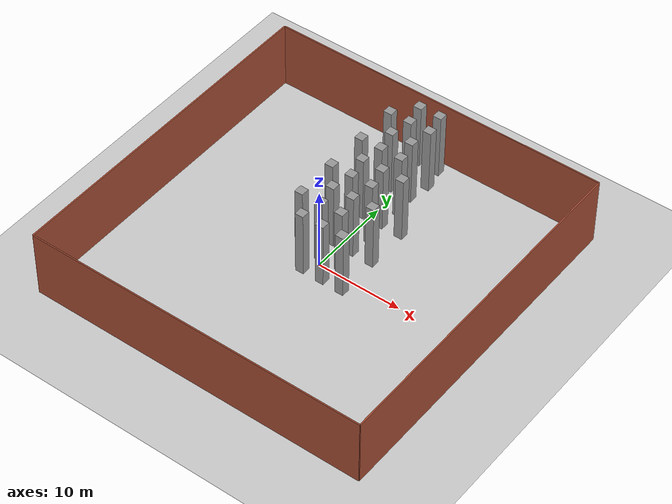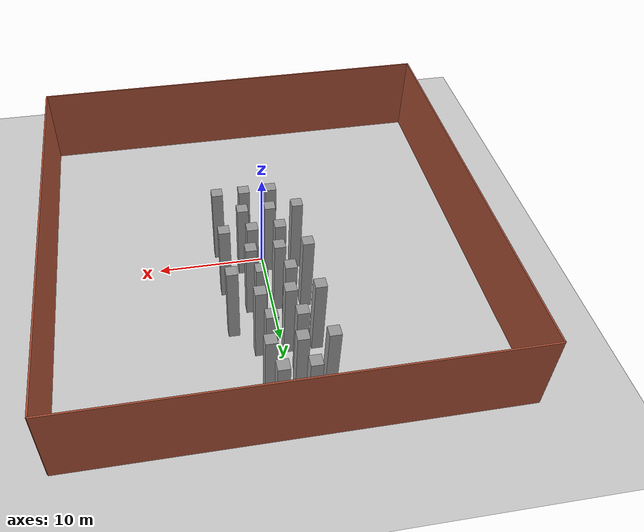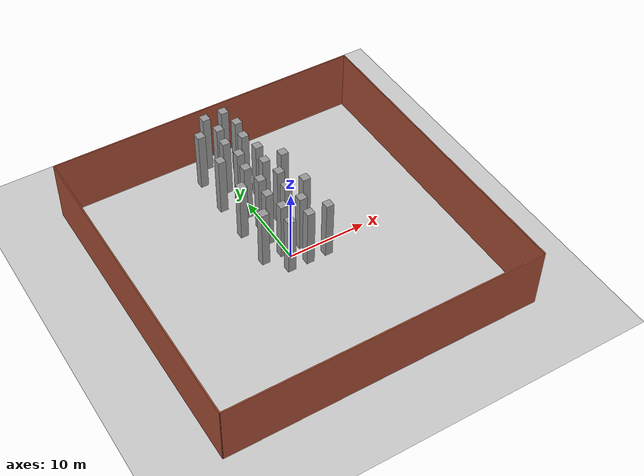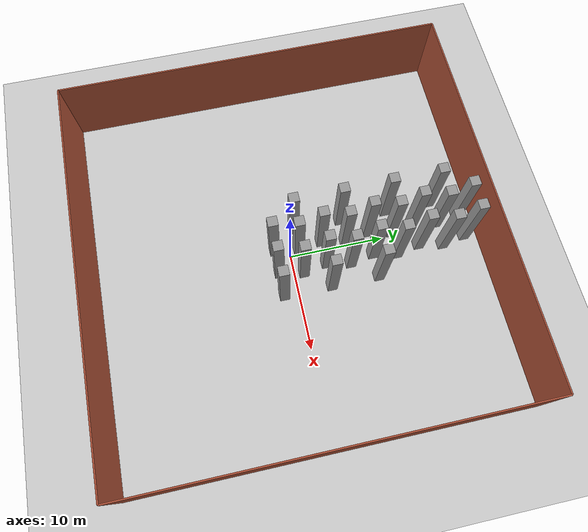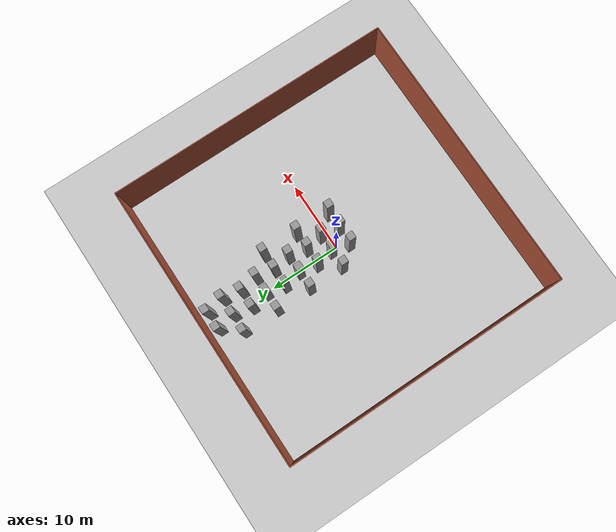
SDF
<sdf version="1.7">
 <world name="default">
  <model name="ground_plane">
   <static>1</static>
   <link name="link">
    <collision name="collision">
     <geometry><plane><normal>0 0 1</normal><size>100 100</size></plane></geometry>
     <surface>
      <contact><collide_bitmask>65535</collide_bitmask></contact>
      <friction><ode><mu>100</mu><mu2>50</mu2></ode></friction>
     </surface>
    </collision>
    <visual name="visual">
     <cast_shadows>0</cast_shadows>
     <geometry><plane><normal>0 0 1</normal><size>100 100</size></plane></geometry>
     <material>
      <script><uri>file://media/materials/scripts/gazebo.material</uri><name>Gazebo/Grey</name></script>
     </material>
    </visual>
   </link>
  </model>
  <model name="sim_room_square">
   <link name="Wall_14">
    <collision name="Wall_14_Collision">
     <geometry><box><size>40 0.15 8</size></box></geometry>
     <pose>0 0 4 0 -0 0</pose>
    </collision>
    <visual name="Wall_14_Visual">
     <pose>0 0 4 0 -0 0</pose>
     <geometry><box><size>40 0.15 8</size></box></geometry>
     <material>
      <script><uri>file://media/materials/scripts/gazebo.material</uri><name>Gazebo/Bricks</name></script>
      <ambient>1 1 1 1</ambient>
     </material>
     <meta><layer>0</layer></meta>
    </visual>
    <pose>20 -0 0 0 -0 -1.5708</pose>
   </link>
   <link name="Wall_15">
    <collision name="Wall_15_Collision">
     <geometry><box><size>40 0.15 8</size></box></geometry>
     <pose>0 0 4 0 -0 0</pose>
    </collision>
    <visual name="Wall_15_Visual">
     <pose>0 0 4 0 -0 0</pose>
     <geometry><box><size>40 0.15 8</size></box></geometry>
     <material>
      <script><uri>file://media/materials/scripts/gazebo.material</uri><name>Gazebo/Bricks</name></script>
      <ambient>1 1 1 1</ambient>
     </material>
     <meta><layer>0</layer></meta>
    </visual>
    <pose>0 -20 0 0 -0 3.14159</pose>
   </link>
   <link name="Wall_16">
    <collision name="Wall_16_Collision">
     <geometry><box><size>40 0.15 8</size></box></geometry>
     <pose>0 0 4 0 -0 0</pose>
    </collision>
    <visual name="Wall_16_Visual">
     <pose>0 0 4 0 -0 0</pose>
     <geometry><box><size>40 0.15 8</size></box></geometry>
     <material>
      <script><uri>file://media/materials/scripts/gazebo.material</uri><name>Gazebo/Bricks</name></script>
      <ambient>1 1 1 1</ambient>
     </material>
     <meta><layer>0</layer></meta>
    </visual>
    <pose>-20 -0 0 0 -0 1.5708</pose>
   </link>
   <link name="Wall_19">
    <collision name="Wall_19_Collision">
     <geometry><box><size>40 0.15 8</size></box></geometry>
     <pose>0 0 4 0 -0 0</pose>
    </collision>
    <visual name="Wall_19_Visual">
     <pose>0 0 4 0 -0 0</pose>
     <geometry><box><size>40 0.15 8</size></box></geometry>
     <material>
      <script><uri>file://media/materials/scripts/gazebo.material</uri><name>Gazebo/Bricks</name></script>
      <ambient>1 1 1 1</ambient>
     </material>
     <meta><layer>0</layer></meta>
    </visual>
    <pose>0 20 0 0 -0 0</pose>
   </link>
   <static>1</static>
  </model>
  <model name="unit_box_static109">
   <link name="link">
    <inertial>
     <mass>1</mass>
     <inertia>
      <ixx>0.166667</ixx>
      <ixy>0</ixy>
      <ixz>0</ixz>
      <iyy>0.166667</iyy>
      <iyz>0</iyz>
      <izz>0.166667</izz>
     </inertia>
    </inertial>
    <visual name="visual">
     <geometry><box><size>1 1 8</size></box></geometry>
     <material>
      <script><name>Gazebo/Grey</name><uri>file://media/materials/scripts/gazebo.material</uri></script>
      <shader type="pixel"/>
     </material>
    </visual>
    <collision name="collision">
     <geometry><box><size>1 1 8</size></box></geometry>
     <surface>
      <friction>
       <ode><mu>1</mu><mu2>1</mu2><fdir1>0 0 0</fdir1><slip1>0</slip1><slip2>0</slip2></ode>
       <torsional>
        <coefficient>1</coefficient>
        <patch_radius>0</patch_radius>
        <surface_radius>0</surface_radius>
        <use_patch_radius>1</use_patch_radius>
        <ode><slip>0</slip></ode>
       </torsional>
      </friction>
      <bounce><restitution_coefficient>0</restitution_coefficient><threshold>1e+06</threshold></bounce>
      <contact>
       <collide_without_contact>0</collide_without_contact>
       <collide_without_contact_bitmask>1</collide_without_contact_bitmask>
       <collide_bitmask>1</collide_bitmask>
       <ode>
        <soft_cfm>0</soft_cfm>
        <soft_erp>0.2</soft_erp>
        <kp>1e+13</kp>
        <kd>1</kd>
        <max_vel>0.01</max_vel>
        <min_depth>0</min_depth>
       </ode>
       <bullet>
        <split_impulse>1</split_impulse>
        <split_impulse_penetration_threshold>-0.01</split_impulse_penetration_threshold>
        <soft_cfm>0</soft_cfm>
        <soft_erp>0.2</soft_erp>
        <kp>1e+13</kp>
        <kd>1</kd>
       </bullet>
      </contact>
     </surface>
    </collision>
   </link>
   <static>1</static>
   <pose>-1 -1.5 4 0 -0 0</pose>
  </model>
  <model name="unit_box_static110">
   <link name="link">
    <inertial>
     <mass>1</mass>
     <inertia>
      <ixx>0.166667</ixx>
      <ixy>0</ixy>
      <ixz>0</ixz>
      <iyy>0.166667</iyy>
      <iyz>0</iyz>
      <izz>0.166667</izz>
     </inertia>
    </inertial>
    <visual name="visual">
     <geometry><box><size>1 1 8</size></box></geometry>
     <material>
      <script><name>Gazebo/Grey</name><uri>file://media/materials/scripts/gazebo.material</uri></script>
      <shader type="pixel"/>
     </material>
    </visual>
    <collision name="collision">
     <geometry><box><size>1 1 8</size></box></geometry>
     <surface>
      <friction>
       <ode><mu>1</mu><mu2>1</mu2><fdir1>0 0 0</fdir1><slip1>0</slip1><slip2>0</slip2></ode>
       <torsional>
        <coefficient>1</coefficient>
        <patch_radius>0</patch_radius>
        <surface_radius>0</surface_radius>
        <use_patch_radius>1</use_patch_radius>
        <ode><slip>0</slip></ode>
       </torsional>
      </friction>
      <bounce><restitution_coefficient>0</restitution_coefficient><threshold>1e+06</threshold></bounce>
      <contact>
       <collide_without_contact>0</collide_without_contact>
       <collide_without_contact_bitmask>1</collide_without_contact_bitmask>
       <collide_bitmask>1</collide_bitmask>
       <ode>
        <soft_cfm>0</soft_cfm>
        <soft_erp>0.2</soft_erp>
        <kp>1e+13</kp>
        <kd>1</kd>
        <max_vel>0.01</max_vel>
        <min_depth>0</min_depth>
       </ode>
       <bullet>
        <split_impulse>1</split_impulse>
        <split_impulse_penetration_threshold>-0.01</split_impulse_penetration_threshold>
        <soft_cfm>0</soft_cfm>
        <soft_erp>0.2</soft_erp>
        <kp>1e+13</kp>
        <kd>1</kd>
       </bullet>
      </contact>
     </surface>
    </collision>
   </link>
   <static>1</static>
   <pose>1.5 -1.5 4 0 -0 0</pose>
  </model>
  <model name="unit_box_static111">
   <link name="link">
    <inertial>
     <mass>1</mass>
     <inertia>
      <ixx>0.166667</ixx>
      <ixy>0</ixy>
      <ixz>0</ixz>
      <iyy>0.166667</iyy>
      <iyz>0</iyz>
      <izz>0.166667</izz>
     </inertia>
    </inertial>
    <visual name="visual">
     <geometry><box><size>1 1 8</size></box></geometry>
     <material>
      <script><name>Gazebo/Grey</name><uri>file://media/materials/scripts/gazebo.material</uri></script>
      <shader type="pixel"/>
     </material>
    </visual>
    <collision name="collision">
     <geometry><box><size>1 1 8</size></box></geometry>
     <surface>
      <friction>
       <ode><mu>1</mu><mu2>1</mu2><fdir1>0 0 0</fdir1><slip1>0</slip1><slip2>0</slip2></ode>
       <torsional>
        <coefficient>1</coefficient>
        <patch_radius>0</patch_radius>
        <surface_radius>0</surface_radius>
        <use_patch_radius>1</use_patch_radius>
        <ode><slip>0</slip></ode>
       </torsional>
      </friction>
      <bounce><restitution_coefficient>0</restitution_coefficient><threshold>1e+06</threshold></bounce>
      <contact>
       <collide_without_contact>0</collide_without_contact>
       <collide_without_contact_bitmask>1</collide_without_contact_bitmask>
       <collide_bitmask>1</collide_bitmask>
       <ode>
        <soft_cfm>0</soft_cfm>
        <soft_erp>0.2</soft_erp>
        <kp>1e+13</kp>
        <kd>1</kd>
        <max_vel>0.01</max_vel>
        <min_depth>0</min_depth>
       </ode>
       <bullet>
        <split_impulse>1</split_impulse>
        <split_impulse_penetration_threshold>-0.01</split_impulse_penetration_threshold>
        <soft_cfm>0</soft_cfm>
        <soft_erp>0.2</soft_erp>
        <kp>1e+13</kp>
        <kd>1</kd>
       </bullet>
      </contact>
     </surface>
    </collision>
   </link>
   <static>1</static>
   <pose>4 -1.5 4 0 -0 0</pose>
  </model>
  <model name="unit_box_static123">
   <link name="link">
    <inertial>
     <mass>1</mass>
     <inertia>
      <ixx>0.166667</ixx>
      <ixy>0</ixy>
      <ixz>0</ixz>
      <iyy>0.166667</iyy>
      <iyz>0</iyz>
      <izz>0.166667</izz>
     </inertia>
    </inertial>
    <visual name="visual">
     <geometry><box><size>1 1 8</size></box></geometry>
     <material>
      <script><name>Gazebo/Grey</name><uri>file://media/materials/scripts/gazebo.material</uri></script>
      <shader type="pixel"/>
     </material>
    </visual>
    <collision name="collision">
     <geometry><box><size>1 1 8</size></box></geometry>
     <surface>
      <friction>
       <ode><mu>1</mu><mu2>1</mu2><fdir1>0 0 0</fdir1><slip1>0</slip1><slip2>0</slip2></ode>
       <torsional>
        <coefficient>1</coefficient>
        <patch_radius>0</patch_radius>
        <surface_radius>0</surface_radius>
        <use_patch_radius>1</use_patch_radius>
        <ode><slip>0</slip></ode>
       </torsional>
      </friction>
      <bounce><restitution_coefficient>0</restitution_coefficient><threshold>1e+06</threshold></bounce>
      <contact>
       <collide_without_contact>0</collide_without_contact>
       <collide_without_contact_bitmask>1</collide_without_contact_bitmask>
       <collide_bitmask>1</collide_bitmask>
       <ode>
        <soft_cfm>0</soft_cfm>
        <soft_erp>0.2</soft_erp>
        <kp>1e+13</kp>
        <kd>1</kd>
        <max_vel>0.01</max_vel>
        <min_depth>0</min_depth>
       </ode>
       <bullet>
        <split_impulse>1</split_impulse>
        <split_impulse_penetration_threshold>-0.01</split_impulse_penetration_threshold>
        <soft_cfm>0</soft_cfm>
        <soft_erp>0.2</soft_erp>
        <kp>1e+13</kp>
        <kd>1</kd>
       </bullet>
      </contact>
     </surface>
    </collision>
   </link>
   <static>1</static>
   <pose>-3 1 4 0 -0 0</pose>
  </model>
  <model name="unit_box_static124">
   <link name="link">
    <inertial>
     <mass>1</mass>
     <inertia>
      <ixx>0.166667</ixx>
      <ixy>0</ixy>
      <ixz>0</ixz>
      <iyy>0.166667</iyy>
      <iyz>0</iyz>
      <izz>0.166667</izz>
     </inertia>
    </inertial>
    <visual name="visual">
     <geometry><box><size>1 1 8</size></box></geometry>
     <material>
      <script><name>Gazebo/Grey</name><uri>file://media/materials/scripts/gazebo.material</uri></script>
      <shader type="pixel"/>
     </material>
    </visual>
    <collision name="collision">
     <geometry><box><size>1 1 8</size></box></geometry>
     <surface>
      <friction>
       <ode><mu>1</mu><mu2>1</mu2><fdir1>0 0 0</fdir1><slip1>0</slip1><slip2>0</slip2></ode>
       <torsional>
        <coefficient>1</coefficient>
        <patch_radius>0</patch_radius>
        <surface_radius>0</surface_radius>
        <use_patch_radius>1</use_patch_radius>
        <ode><slip>0</slip></ode>
       </torsional>
      </friction>
      <bounce><restitution_coefficient>0</restitution_coefficient><threshold>1e+06</threshold></bounce>
      <contact>
       <collide_without_contact>0</collide_without_contact>
       <collide_without_contact_bitmask>1</collide_without_contact_bitmask>
       <collide_bitmask>1</collide_bitmask>
       <ode>
        <soft_cfm>0</soft_cfm>
        <soft_erp>0.2</soft_erp>
        <kp>1e+13</kp>
        <kd>1</kd>
        <max_vel>0.01</max_vel>
        <min_depth>0</min_depth>
       </ode>
       <bullet>
        <split_impulse>1</split_impulse>
        <split_impulse_penetration_threshold>-0.01</split_impulse_penetration_threshold>
        <soft_cfm>0</soft_cfm>
        <soft_erp>0.2</soft_erp>
        <kp>1e+13</kp>
        <kd>1</kd>
       </bullet>
      </contact>
     </surface>
    </collision>
   </link>
   <static>1</static>
   <pose>-0.5 1 4 0 -0 0</pose>
  </model>
  <model name="unit_box_static125">
   <link name="link">
    <inertial>
     <mass>1</mass>
     <inertia>
      <ixx>0.166667</ixx>
      <ixy>0</ixy>
      <ixz>0</ixz>
      <iyy>0.166667</iyy>
      <iyz>0</iyz>
      <izz>0.166667</izz>
     </inertia>
    </inertial>
    <visual name="visual">
     <geometry><box><size>1 1 8</size></box></geometry>
     <material>
      <script><name>Gazebo/Grey</name><uri>file://media/materials/scripts/gazebo.material</uri></script>
      <shader type="pixel"/>
     </material>
    </visual>
    <collision name="collision">
     <geometry><box><size>1 1 8</size></box></geometry>
     <surface>
      <friction>
       <ode><mu>1</mu><mu2>1</mu2><fdir1>0 0 0</fdir1><slip1>0</slip1><slip2>0</slip2></ode>
       <torsional>
        <coefficient>1</coefficient>
        <patch_radius>0</patch_radius>
        <surface_radius>0</surface_radius>
        <use_patch_radius>1</use_patch_radius>
        <ode><slip>0</slip></ode>
       </torsional>
      </friction>
      <bounce><restitution_coefficient>0</restitution_coefficient><threshold>1e+06</threshold></bounce>
      <contact>
       <collide_without_contact>0</collide_without_contact>
       <collide_without_contact_bitmask>1</collide_without_contact_bitmask>
       <collide_bitmask>1</collide_bitmask>
       <ode>
        <soft_cfm>0</soft_cfm>
        <soft_erp>0.2</soft_erp>
        <kp>1e+13</kp>
        <kd>1</kd>
        <max_vel>0.01</max_vel>
        <min_depth>0</min_depth>
       </ode>
       <bullet>
        <split_impulse>1</split_impulse>
        <split_impulse_penetration_threshold>-0.01</split_impulse_penetration_threshold>
        <soft_cfm>0</soft_cfm>
        <soft_erp>0.2</soft_erp>
        <kp>1e+13</kp>
        <kd>1</kd>
       </bullet>
      </contact>
     </surface>
    </collision>
   </link>
   <static>1</static>
   <pose>2 1 4 0 -0 0</pose>
  </model>
  <model name="unit_box_static138">
   <link name="link">
    <inertial>
     <mass>1</mass>
     <inertia>
      <ixx>0.166667</ixx>
      <ixy>0</ixy>
      <ixz>0</ixz>
      <iyy>0.166667</iyy>
      <iyz>0</iyz>
      <izz>0.166667</izz>
     </inertia>
    </inertial>
    <visual name="visual">
     <geometry><box><size>1 1 8</size></box></geometry>
     <material>
      <script><name>Gazebo/Grey</name><uri>file://media/materials/scripts/gazebo.material</uri></script>
      <shader type="pixel"/>
     </material>
    </visual>
    <collision name="collision">
     <geometry><box><size>1 1 8</size></box></geometry>
     <surface>
      <friction>
       <ode><mu>1</mu><mu2>1</mu2><fdir1>0 0 0</fdir1><slip1>0</slip1><slip2>0</slip2></ode>
       <torsional>
        <coefficient>1</coefficient>
        <patch_radius>0</patch_radius>
        <surface_radius>0</surface_radius>
        <use_patch_radius>1</use_patch_radius>
        <ode><slip>0</slip></ode>
       </torsional>
      </friction>
      <bounce><restitution_coefficient>0</restitution_coefficient><threshold>1e+06</threshold></bounce>
      <contact>
       <collide_without_contact>0</collide_without_contact>
       <collide_without_contact_bitmask>1</collide_without_contact_bitmask>
       <collide_bitmask>1</collide_bitmask>
       <ode>
        <soft_cfm>0</soft_cfm>
        <soft_erp>0.2</soft_erp>
        <kp>1e+13</kp>
        <kd>1</kd>
        <max_vel>0.01</max_vel>
        <min_depth>0</min_depth>
       </ode>
       <bullet>
        <split_impulse>1</split_impulse>
        <split_impulse_penetration_threshold>-0.01</split_impulse_penetration_threshold>
        <soft_cfm>0</soft_cfm>
        <soft_erp>0.2</soft_erp>
        <kp>1e+13</kp>
        <kd>1</kd>
       </bullet>
      </contact>
     </surface>
    </collision>
   </link>
   <static>1</static>
   <pose>-1 3.5 4 0 -0 0</pose>
  </model>
  <model name="unit_box_static139">
   <link name="link">
    <inertial>
     <mass>1</mass>
     <inertia>
      <ixx>0.166667</ixx>
      <ixy>0</ixy>
      <ixz>0</ixz>
      <iyy>0.166667</iyy>
      <iyz>0</iyz>
      <izz>0.166667</izz>
     </inertia>
    </inertial>
    <visual name="visual">
     <geometry><box><size>1 1 8</size></box></geometry>
     <material>
      <script><name>Gazebo/Grey</name><uri>file://media/materials/scripts/gazebo.material</uri></script>
      <shader type="pixel"/>
     </material>
    </visual>
    <collision name="collision">
     <geometry><box><size>1 1 8</size></box></geometry>
     <surface>
      <friction>
       <ode><mu>1</mu><mu2>1</mu2><fdir1>0 0 0</fdir1><slip1>0</slip1><slip2>0</slip2></ode>
       <torsional>
        <coefficient>1</coefficient>
        <patch_radius>0</patch_radius>
        <surface_radius>0</surface_radius>
        <use_patch_radius>1</use_patch_radius>
        <ode><slip>0</slip></ode>
       </torsional>
      </friction>
      <bounce><restitution_coefficient>0</restitution_coefficient><threshold>1e+06</threshold></bounce>
      <contact>
       <collide_without_contact>0</collide_without_contact>
       <collide_without_contact_bitmask>1</collide_without_contact_bitmask>
       <collide_bitmask>1</collide_bitmask>
       <ode>
        <soft_cfm>0</soft_cfm>
        <soft_erp>0.2</soft_erp>
        <kp>1e+13</kp>
        <kd>1</kd>
        <max_vel>0.01</max_vel>
        <min_depth>0</min_depth>
       </ode>
       <bullet>
        <split_impulse>1</split_impulse>
        <split_impulse_penetration_threshold>-0.01</split_impulse_penetration_threshold>
        <soft_cfm>0</soft_cfm>
        <soft_erp>0.2</soft_erp>
        <kp>1e+13</kp>
        <kd>1</kd>
       </bullet>
      </contact>
     </surface>
    </collision>
   </link>
   <static>1</static>
   <pose>1.5 3.5 4 0 -0 0</pose>
  </model>
  <model name="unit_box_static140">
   <link name="link">
    <inertial>
     <mass>1</mass>
     <inertia>
      <ixx>0.166667</ixx>
      <ixy>0</ixy>
      <ixz>0</ixz>
      <iyy>0.166667</iyy>
      <iyz>0</iyz>
      <izz>0.166667</izz>
     </inertia>
    </inertial>
    <visual name="visual">
     <geometry><box><size>1 1 8</size></box></geometry>
     <material>
      <script><name>Gazebo/Grey</name><uri>file://media/materials/scripts/gazebo.material</uri></script>
      <shader type="pixel"/>
     </material>
    </visual>
    <collision name="collision">
     <geometry><box><size>1 1 8</size></box></geometry>
     <surface>
      <friction>
       <ode><mu>1</mu><mu2>1</mu2><fdir1>0 0 0</fdir1><slip1>0</slip1><slip2>0</slip2></ode>
       <torsional>
        <coefficient>1</coefficient>
        <patch_radius>0</patch_radius>
        <surface_radius>0</surface_radius>
        <use_patch_radius>1</use_patch_radius>
        <ode><slip>0</slip></ode>
       </torsional>
      </friction>
      <bounce><restitution_coefficient>0</restitution_coefficient><threshold>1e+06</threshold></bounce>
      <contact>
       <collide_without_contact>0</collide_without_contact>
       <collide_without_contact_bitmask>1</collide_without_contact_bitmask>
       <collide_bitmask>1</collide_bitmask>
       <ode>
        <soft_cfm>0</soft_cfm>
        <soft_erp>0.2</soft_erp>
        <kp>1e+13</kp>
        <kd>1</kd>
        <max_vel>0.01</max_vel>
        <min_depth>0</min_depth>
       </ode>
       <bullet>
        <split_impulse>1</split_impulse>
        <split_impulse_penetration_threshold>-0.01</split_impulse_penetration_threshold>
        <soft_cfm>0</soft_cfm>
        <soft_erp>0.2</soft_erp>
        <kp>1e+13</kp>
        <kd>1</kd>
       </bullet>
      </contact>
     </surface>
    </collision>
   </link>
   <static>1</static>
   <pose>4 3.5 4 0 -0 0</pose>
  </model>
  <model name="unit_box_static152">
   <link name="link">
    <inertial>
     <mass>1</mass>
     <inertia>
      <ixx>0.166667</ixx>
      <ixy>0</ixy>
      <ixz>0</ixz>
      <iyy>0.166667</iyy>
      <iyz>0</iyz>
      <izz>0.166667</izz>
     </inertia>
    </inertial>
    <visual name="visual">
     <geometry><box><size>1 1 8</size></box></geometry>
     <material>
      <script><name>Gazebo/Grey</name><uri>file://media/materials/scripts/gazebo.material</uri></script>
      <shader type="pixel"/>
     </material>
    </visual>
    <collision name="collision">
     <geometry><box><size>1 1 8</size></box></geometry>
     <surface>
      <friction>
       <ode><mu>1</mu><mu2>1</mu2><fdir1>0 0 0</fdir1><slip1>0</slip1><slip2>0</slip2></ode>
       <torsional>
        <coefficient>1</coefficient>
        <patch_radius>0</patch_radius>
        <surface_radius>0</surface_radius>
        <use_patch_radius>1</use_patch_radius>
        <ode><slip>0</slip></ode>
       </torsional>
      </friction>
      <bounce><restitution_coefficient>0</restitution_coefficient><threshold>1e+06</threshold></bounce>
      <contact>
       <collide_without_contact>0</collide_without_contact>
       <collide_without_contact_bitmask>1</collide_without_contact_bitmask>
       <collide_bitmask>1</collide_bitmask>
       <ode>
        <soft_cfm>0</soft_cfm>
        <soft_erp>0.2</soft_erp>
        <kp>1e+13</kp>
        <kd>1</kd>
        <max_vel>0.01</max_vel>
        <min_depth>0</min_depth>
       </ode>
       <bullet>
        <split_impulse>1</split_impulse>
        <split_impulse_penetration_threshold>-0.01</split_impulse_penetration_threshold>
        <soft_cfm>0</soft_cfm>
        <soft_erp>0.2</soft_erp>
        <kp>1e+13</kp>
        <kd>1</kd>
       </bullet>
      </contact>
     </surface>
    </collision>
   </link>
   <static>1</static>
   <pose>-3 6 4 0 -0 0</pose>
  </model>
  <model name="unit_box_static153">
   <link name="link">
    <inertial>
     <mass>1</mass>
     <inertia>
      <ixx>0.166667</ixx>
      <ixy>0</ixy>
      <ixz>0</ixz>
      <iyy>0.166667</iyy>
      <iyz>0</iyz>
      <izz>0.166667</izz>
     </inertia>
    </inertial>
    <visual name="visual">
     <geometry><box><size>1 1 8</size></box></geometry>
     <material>
      <script><name>Gazebo/Grey</name><uri>file://media/materials/scripts/gazebo.material</uri></script>
      <shader type="pixel"/>
     </material>
    </visual>
    <collision name="collision">
     <geometry><box><size>1 1 8</size></box></geometry>
     <surface>
      <friction>
       <ode><mu>1</mu><mu2>1</mu2><fdir1>0 0 0</fdir1><slip1>0</slip1><slip2>0</slip2></ode>
       <torsional>
        <coefficient>1</coefficient>
        <patch_radius>0</patch_radius>
        <surface_radius>0</surface_radius>
        <use_patch_radius>1</use_patch_radius>
        <ode><slip>0</slip></ode>
       </torsional>
      </friction>
      <bounce><restitution_coefficient>0</restitution_coefficient><threshold>1e+06</threshold></bounce>
      <contact>
       <collide_without_contact>0</collide_without_contact>
       <collide_without_contact_bitmask>1</collide_without_contact_bitmask>
       <collide_bitmask>1</collide_bitmask>
       <ode>
        <soft_cfm>0</soft_cfm>
        <soft_erp>0.2</soft_erp>
        <kp>1e+13</kp>
        <kd>1</kd>
        <max_vel>0.01</max_vel>
        <min_depth>0</min_depth>
       </ode>
       <bullet>
        <split_impulse>1</split_impulse>
        <split_impulse_penetration_threshold>-0.01</split_impulse_penetration_threshold>
        <soft_cfm>0</soft_cfm>
        <soft_erp>0.2</soft_erp>
        <kp>1e+13</kp>
        <kd>1</kd>
       </bullet>
      </contact>
     </surface>
    </collision>
   </link>
   <static>1</static>
   <pose>-0.5 6 4 0 -0 0</pose>
  </model>
  <model name="unit_box_static154">
   <link name="link">
    <inertial>
     <mass>1</mass>
     <inertia>
      <ixx>0.166667</ixx>
      <ixy>0</ixy>
      <ixz>0</ixz>
      <iyy>0.166667</iyy>
      <iyz>0</iyz>
      <izz>0.166667</izz>
     </inertia>
    </inertial>
    <visual name="visual">
     <geometry><box><size>1 1 8</size></box></geometry>
     <material>
      <script><name>Gazebo/Grey</name><uri>file://media/materials/scripts/gazebo.material</uri></script>
      <shader type="pixel"/>
     </material>
    </visual>
    <collision name="collision">
     <geometry><box><size>1 1 8</size></box></geometry>
     <surface>
      <friction>
       <ode><mu>1</mu><mu2>1</mu2><fdir1>0 0 0</fdir1><slip1>0</slip1><slip2>0</slip2></ode>
       <torsional>
        <coefficient>1</coefficient>
        <patch_radius>0</patch_radius>
        <surface_radius>0</surface_radius>
        <use_patch_radius>1</use_patch_radius>
        <ode><slip>0</slip></ode>
       </torsional>
      </friction>
      <bounce><restitution_coefficient>0</restitution_coefficient><threshold>1e+06</threshold></bounce>
      <contact>
       <collide_without_contact>0</collide_without_contact>
       <collide_without_contact_bitmask>1</collide_without_contact_bitmask>
       <collide_bitmask>1</collide_bitmask>
       <ode>
        <soft_cfm>0</soft_cfm>
        <soft_erp>0.2</soft_erp>
        <kp>1e+13</kp>
        <kd>1</kd>
        <max_vel>0.01</max_vel>
        <min_depth>0</min_depth>
       </ode>
       <bullet>
        <split_impulse>1</split_impulse>
        <split_impulse_penetration_threshold>-0.01</split_impulse_penetration_threshold>
        <soft_cfm>0</soft_cfm>
        <soft_erp>0.2</soft_erp>
        <kp>1e+13</kp>
        <kd>1</kd>
       </bullet>
      </contact>
     </surface>
    </collision>
   </link>
   <static>1</static>
   <pose>2 6 4 0 -0 0</pose>
  </model>
  <model name="unit_box_static167">
   <link name="link">
    <inertial>
     <mass>1</mass>
     <inertia>
      <ixx>0.166667</ixx>
      <ixy>0</ixy>
      <ixz>0</ixz>
      <iyy>0.166667</iyy>
      <iyz>0</iyz>
      <izz>0.166667</izz>
     </inertia>
    </inertial>
    <visual name="visual">
     <geometry><box><size>1 1 8</size></box></geometry>
     <material>
      <script><name>Gazebo/Grey</name><uri>file://media/materials/scripts/gazebo.material</uri></script>
      <shader type="pixel"/>
     </material>
    </visual>
    <collision name="collision">
     <geometry><box><size>1 1 8</size></box></geometry>
     <surface>
      <friction>
       <ode><mu>1</mu><mu2>1</mu2><fdir1>0 0 0</fdir1><slip1>0</slip1><slip2>0</slip2></ode>
       <torsional>
        <coefficient>1</coefficient>
        <patch_radius>0</patch_radius>
        <surface_radius>0</surface_radius>
        <use_patch_radius>1</use_patch_radius>
        <ode><slip>0</slip></ode>
       </torsional>
      </friction>
      <bounce><restitution_coefficient>0</restitution_coefficient><threshold>1e+06</threshold></bounce>
      <contact>
       <collide_without_contact>0</collide_without_contact>
       <collide_without_contact_bitmask>1</collide_without_contact_bitmask>
       <collide_bitmask>1</collide_bitmask>
       <ode>
        <soft_cfm>0</soft_cfm>
        <soft_erp>0.2</soft_erp>
        <kp>1e+13</kp>
        <kd>1</kd>
        <max_vel>0.01</max_vel>
        <min_depth>0</min_depth>
       </ode>
       <bullet>
        <split_impulse>1</split_impulse>
        <split_impulse_penetration_threshold>-0.01</split_impulse_penetration_threshold>
        <soft_cfm>0</soft_cfm>
        <soft_erp>0.2</soft_erp>
        <kp>1e+13</kp>
        <kd>1</kd>
       </bullet>
      </contact>
     </surface>
    </collision>
   </link>
   <static>1</static>
   <pose>-1 8.5 4 0 -0 0</pose>
  </model>
  <model name="unit_box_static168">
   <link name="link">
    <inertial>
     <mass>1</mass>
     <inertia>
      <ixx>0.166667</ixx>
      <ixy>0</ixy>
      <ixz>0</ixz>
      <iyy>0.166667</iyy>
      <iyz>0</iyz>
      <izz>0.166667</izz>
     </inertia>
    </inertial>
    <visual name="visual">
     <geometry><box><size>1 1 8</size></box></geometry>
     <material>
      <script><name>Gazebo/Grey</name><uri>file://media/materials/scripts/gazebo.material</uri></script>
      <shader type="pixel"/>
     </material>
    </visual>
    <collision name="collision">
     <geometry><box><size>1 1 8</size></box></geometry>
     <surface>
      <friction>
       <ode><mu>1</mu><mu2>1</mu2><fdir1>0 0 0</fdir1><slip1>0</slip1><slip2>0</slip2></ode>
       <torsional>
        <coefficient>1</coefficient>
        <patch_radius>0</patch_radius>
        <surface_radius>0</surface_radius>
        <use_patch_radius>1</use_patch_radius>
        <ode><slip>0</slip></ode>
       </torsional>
      </friction>
      <bounce><restitution_coefficient>0</restitution_coefficient><threshold>1e+06</threshold></bounce>
      <contact>
       <collide_without_contact>0</collide_without_contact>
       <collide_without_contact_bitmask>1</collide_without_contact_bitmask>
       <collide_bitmask>1</collide_bitmask>
       <ode>
        <soft_cfm>0</soft_cfm>
        <soft_erp>0.2</soft_erp>
        <kp>1e+13</kp>
        <kd>1</kd>
        <max_vel>0.01</max_vel>
        <min_depth>0</min_depth>
       </ode>
       <bullet>
        <split_impulse>1</split_impulse>
        <split_impulse_penetration_threshold>-0.01</split_impulse_penetration_threshold>
        <soft_cfm>0</soft_cfm>
        <soft_erp>0.2</soft_erp>
        <kp>1e+13</kp>
        <kd>1</kd>
       </bullet>
      </contact>
     </surface>
    </collision>
   </link>
   <static>1</static>
   <pose>1.5 8.5 4 0 -0 0</pose>
  </model>
  <model name="unit_box_static169">
   <link name="link">
    <inertial>
     <mass>1</mass>
     <inertia>
      <ixx>0.166667</ixx>
      <ixy>0</ixy>
      <ixz>0</ixz>
      <iyy>0.166667</iyy>
      <iyz>0</iyz>
      <izz>0.166667</izz>
     </inertia>
    </inertial>
    <visual name="visual">
     <geometry><box><size>1 1 8</size></box></geometry>
     <material>
      <script><name>Gazebo/Grey</name><uri>file://media/materials/scripts/gazebo.material</uri></script>
      <shader type="pixel"/>
     </material>
    </visual>
    <collision name="collision">
     <geometry><box><size>1 1 8</size></box></geometry>
     <surface>
      <friction>
       <ode><mu>1</mu><mu2>1</mu2><fdir1>0 0 0</fdir1><slip1>0</slip1><slip2>0</slip2></ode>
       <torsional>
        <coefficient>1</coefficient>
        <patch_radius>0</patch_radius>
        <surface_radius>0</surface_radius>
        <use_patch_radius>1</use_patch_radius>
        <ode><slip>0</slip></ode>
       </torsional>
      </friction>
      <bounce><restitution_coefficient>0</restitution_coefficient><threshold>1e+06</threshold></bounce>
      <contact>
       <collide_without_contact>0</collide_without_contact>
       <collide_without_contact_bitmask>1</collide_without_contact_bitmask>
       <collide_bitmask>1</collide_bitmask>
       <ode>
        <soft_cfm>0</soft_cfm>
        <soft_erp>0.2</soft_erp>
        <kp>1e+13</kp>
        <kd>1</kd>
        <max_vel>0.01</max_vel>
        <min_depth>0</min_depth>
       </ode>
       <bullet>
        <split_impulse>1</split_impulse>
        <split_impulse_penetration_threshold>-0.01</split_impulse_penetration_threshold>
        <soft_cfm>0</soft_cfm>
        <soft_erp>0.2</soft_erp>
        <kp>1e+13</kp>
        <kd>1</kd>
       </bullet>
      </contact>
     </surface>
    </collision>
   </link>
   <static>1</static>
   <pose>4 8.5 4 0 -0 0</pose>
  </model>
  <model name="unit_box_static181">
   <link name="link">
    <inertial>
     <mass>1</mass>
     <inertia>
      <ixx>0.166667</ixx>
      <ixy>0</ixy>
      <ixz>0</ixz>
      <iyy>0.166667</iyy>
      <iyz>0</iyz>
      <izz>0.166667</izz>
     </inertia>
    </inertial>
    <visual name="visual">
     <geometry><box><size>1 1 8</size></box></geometry>
     <material>
      <script><name>Gazebo/Grey</name><uri>file://media/materials/scripts/gazebo.material</uri></script>
      <shader type="pixel"/>
     </material>
    </visual>
    <collision name="collision">
     <geometry><box><size>1 1 8</size></box></geometry>
     <surface>
      <friction>
       <ode><mu>1</mu><mu2>1</mu2><fdir1>0 0 0</fdir1><slip1>0</slip1><slip2>0</slip2></ode>
       <torsional>
        <coefficient>1</coefficient>
        <patch_radius>0</patch_radius>
        <surface_radius>0</surface_radius>
        <use_patch_radius>1</use_patch_radius>
        <ode><slip>0</slip></ode>
       </torsional>
      </friction>
      <bounce><restitution_coefficient>0</restitution_coefficient><threshold>1e+06</threshold></bounce>
      <contact>
       <collide_without_contact>0</collide_without_contact>
       <collide_without_contact_bitmask>1</collide_without_contact_bitmask>
       <collide_bitmask>1</collide_bitmask>
       <ode>
        <soft_cfm>0</soft_cfm>
        <soft_erp>0.2</soft_erp>
        <kp>1e+13</kp>
        <kd>1</kd>
        <max_vel>0.01</max_vel>
        <min_depth>0</min_depth>
       </ode>
       <bullet>
        <split_impulse>1</split_impulse>
        <split_impulse_penetration_threshold>-0.01</split_impulse_penetration_threshold>
        <soft_cfm>0</soft_cfm>
        <soft_erp>0.2</soft_erp>
        <kp>1e+13</kp>
        <kd>1</kd>
       </bullet>
      </contact>
     </surface>
    </collision>
   </link>
   <static>1</static>
   <pose>-3 11 4 0 -0 0</pose>
  </model>
  <model name="unit_box_static182">
   <link name="link">
    <inertial>
     <mass>1</mass>
     <inertia>
      <ixx>0.166667</ixx>
      <ixy>0</ixy>
      <ixz>0</ixz>
      <iyy>0.166667</iyy>
      <iyz>0</iyz>
      <izz>0.166667</izz>
     </inertia>
    </inertial>
    <visual name="visual">
     <geometry><box><size>1 1 8</size></box></geometry>
     <material>
      <script><name>Gazebo/Grey</name><uri>file://media/materials/scripts/gazebo.material</uri></script>
      <shader type="pixel"/>
     </material>
    </visual>
    <collision name="collision">
     <geometry><box><size>1 1 8</size></box></geometry>
     <surface>
      <friction>
       <ode><mu>1</mu><mu2>1</mu2><fdir1>0 0 0</fdir1><slip1>0</slip1><slip2>0</slip2></ode>
       <torsional>
        <coefficient>1</coefficient>
        <patch_radius>0</patch_radius>
        <surface_radius>0</surface_radius>
        <use_patch_radius>1</use_patch_radius>
        <ode><slip>0</slip></ode>
       </torsional>
      </friction>
      <bounce><restitution_coefficient>0</restitution_coefficient><threshold>1e+06</threshold></bounce>
      <contact>
       <collide_without_contact>0</collide_without_contact>
       <collide_without_contact_bitmask>1</collide_without_contact_bitmask>
       <collide_bitmask>1</collide_bitmask>
       <ode>
        <soft_cfm>0</soft_cfm>
        <soft_erp>0.2</soft_erp>
        <kp>1e+13</kp>
        <kd>1</kd>
        <max_vel>0.01</max_vel>
        <min_depth>0</min_depth>
       </ode>
       <bullet>
        <split_impulse>1</split_impulse>
        <split_impulse_penetration_threshold>-0.01</split_impulse_penetration_threshold>
        <soft_cfm>0</soft_cfm>
        <soft_erp>0.2</soft_erp>
        <kp>1e+13</kp>
        <kd>1</kd>
       </bullet>
      </contact>
     </surface>
    </collision>
   </link>
   <static>1</static>
   <pose>-0.5 11 4 0 -0 0</pose>
  </model>
  <model name="unit_box_static183">
   <link name="link">
    <inertial>
     <mass>1</mass>
     <inertia>
      <ixx>0.166667</ixx>
      <ixy>0</ixy>
      <ixz>0</ixz>
      <iyy>0.166667</iyy>
      <iyz>0</iyz>
      <izz>0.166667</izz>
     </inertia>
    </inertial>
    <visual name="visual">
     <geometry><box><size>1 1 8</size></box></geometry>
     <material>
      <script><name>Gazebo/Grey</name><uri>file://media/materials/scripts/gazebo.material</uri></script>
      <shader type="pixel"/>
     </material>
    </visual>
    <collision name="collision">
     <geometry><box><size>1 1 8</size></box></geometry>
     <surface>
      <friction>
       <ode><mu>1</mu><mu2>1</mu2><fdir1>0 0 0</fdir1><slip1>0</slip1><slip2>0</slip2></ode>
       <torsional>
        <coefficient>1</coefficient>
        <patch_radius>0</patch_radius>
        <surface_radius>0</surface_radius>
        <use_patch_radius>1</use_patch_radius>
        <ode><slip>0</slip></ode>
       </torsional>
      </friction>
      <bounce><restitution_coefficient>0</restitution_coefficient><threshold>1e+06</threshold></bounce>
      <contact>
       <collide_without_contact>0</collide_without_contact>
       <collide_without_contact_bitmask>1</collide_without_contact_bitmask>
       <collide_bitmask>1</collide_bitmask>
       <ode>
        <soft_cfm>0</soft_cfm>
        <soft_erp>0.2</soft_erp>
        <kp>1e+13</kp>
        <kd>1</kd>
        <max_vel>0.01</max_vel>
        <min_depth>0</min_depth>
       </ode>
       <bullet>
        <split_impulse>1</split_impulse>
        <split_impulse_penetration_threshold>-0.01</split_impulse_penetration_threshold>
        <soft_cfm>0</soft_cfm>
        <soft_erp>0.2</soft_erp>
        <kp>1e+13</kp>
        <kd>1</kd>
       </bullet>
      </contact>
     </surface>
    </collision>
   </link>
   <static>1</static>
   <pose>2 11 4 0 -0 0</pose>
  </model>
  <model name="unit_box_static196">
   <link name="link">
    <inertial>
     <mass>1</mass>
     <inertia>
      <ixx>0.166667</ixx>
      <ixy>0</ixy>
      <ixz>0</ixz>
      <iyy>0.166667</iyy>
      <iyz>0</iyz>
      <izz>0.166667</izz>
     </inertia>
    </inertial>
    <visual name="visual">
     <geometry><box><size>1 1 8</size></box></geometry>
     <material>
      <script><name>Gazebo/Grey</name><uri>file://media/materials/scripts/gazebo.material</uri></script>
      <shader type="pixel"/>
     </material>
    </visual>
    <collision name="collision">
     <geometry><box><size>1 1 8</size></box></geometry>
     <surface>
      <friction>
       <ode><mu>1</mu><mu2>1</mu2><fdir1>0 0 0</fdir1><slip1>0</slip1><slip2>0</slip2></ode>
       <torsional>
        <coefficient>1</coefficient>
        <patch_radius>0</patch_radius>
        <surface_radius>0</surface_radius>
        <use_patch_radius>1</use_patch_radius>
        <ode><slip>0</slip></ode>
       </torsional>
      </friction>
      <bounce><restitution_coefficient>0</restitution_coefficient><threshold>1e+06</threshold></bounce>
      <contact>
       <collide_without_contact>0</collide_without_contact>
       <collide_without_contact_bitmask>1</collide_without_contact_bitmask>
       <collide_bitmask>1</collide_bitmask>
       <ode>
        <soft_cfm>0</soft_cfm>
        <soft_erp>0.2</soft_erp>
        <kp>1e+13</kp>
        <kd>1</kd>
        <max_vel>0.01</max_vel>
        <min_depth>0</min_depth>
       </ode>
       <bullet>
        <split_impulse>1</split_impulse>
        <split_impulse_penetration_threshold>-0.01</split_impulse_penetration_threshold>
        <soft_cfm>0</soft_cfm>
        <soft_erp>0.2</soft_erp>
        <kp>1e+13</kp>
        <kd>1</kd>
       </bullet>
      </contact>
     </surface>
    </collision>
   </link>
   <static>1</static>
   <pose>-1 13.5 4 0 -0 0</pose>
  </model>
  <model name="unit_box_static197">
   <link name="link">
    <inertial>
     <mass>1</mass>
     <inertia>
      <ixx>0.166667</ixx>
      <ixy>0</ixy>
      <ixz>0</ixz>
      <iyy>0.166667</iyy>
      <iyz>0</iyz>
      <izz>0.166667</izz>
     </inertia>
    </inertial>
    <visual name="visual">
     <geometry><box><size>1 1 8</size></box></geometry>
     <material>
      <script><name>Gazebo/Grey</name><uri>file://media/materials/scripts/gazebo.material</uri></script>
      <shader type="pixel"/>
     </material>
    </visual>
    <collision name="collision">
     <geometry><box><size>1 1 8</size></box></geometry>
     <surface>
      <friction>
       <ode><mu>1</mu><mu2>1</mu2><fdir1>0 0 0</fdir1><slip1>0</slip1><slip2>0</slip2></ode>
       <torsional>
        <coefficient>1</coefficient>
        <patch_radius>0</patch_radius>
        <surface_radius>0</surface_radius>
        <use_patch_radius>1</use_patch_radius>
        <ode><slip>0</slip></ode>
       </torsional>
      </friction>
      <bounce><restitution_coefficient>0</restitution_coefficient><threshold>1e+06</threshold></bounce>
      <contact>
       <collide_without_contact>0</collide_without_contact>
       <collide_without_contact_bitmask>1</collide_without_contact_bitmask>
       <collide_bitmask>1</collide_bitmask>
       <ode>
        <soft_cfm>0</soft_cfm>
        <soft_erp>0.2</soft_erp>
        <kp>1e+13</kp>
        <kd>1</kd>
        <max_vel>0.01</max_vel>
        <min_depth>0</min_depth>
       </ode>
       <bullet>
        <split_impulse>1</split_impulse>
        <split_impulse_penetration_threshold>-0.01</split_impulse_penetration_threshold>
        <soft_cfm>0</soft_cfm>
        <soft_erp>0.2</soft_erp>
        <kp>1e+13</kp>
        <kd>1</kd>
       </bullet>
      </contact>
     </surface>
    </collision>
   </link>
   <static>1</static>
   <pose>1.5 13.5 4 0 -0 0</pose>
  </model>
  <model name="unit_box_static210">
   <link name="link">
    <inertial>
     <mass>1</mass>
     <inertia>
      <ixx>0.166667</ixx>
      <ixy>0</ixy>
      <ixz>0</ixz>
      <iyy>0.166667</iyy>
      <iyz>0</iyz>
      <izz>0.166667</izz>
     </inertia>
    </inertial>
    <visual name="visual">
     <geometry><box><size>1 1 8</size></box></geometry>
     <material>
      <script><name>Gazebo/Grey</name><uri>file://media/materials/scripts/gazebo.material</uri></script>
      <shader type="pixel"/>
     </material>
    </visual>
    <collision name="collision">
     <geometry><box><size>1 1 8</size></box></geometry>
     <surface>
      <friction>
       <ode><mu>1</mu><mu2>1</mu2><fdir1>0 0 0</fdir1><slip1>0</slip1><slip2>0</slip2></ode>
       <torsional>
        <coefficient>1</coefficient>
        <patch_radius>0</patch_radius>
        <surface_radius>0</surface_radius>
        <use_patch_radius>1</use_patch_radius>
        <ode><slip>0</slip></ode>
       </torsional>
      </friction>
      <bounce><restitution_coefficient>0</restitution_coefficient><threshold>1e+06</threshold></bounce>
      <contact>
       <collide_without_contact>0</collide_without_contact>
       <collide_without_contact_bitmask>1</collide_without_contact_bitmask>
       <collide_bitmask>1</collide_bitmask>
       <ode>
        <soft_cfm>0</soft_cfm>
        <soft_erp>0.2</soft_erp>
        <kp>1e+13</kp>
        <kd>1</kd>
        <max_vel>0.01</max_vel>
        <min_depth>0</min_depth>
       </ode>
       <bullet>
        <split_impulse>1</split_impulse>
        <split_impulse_penetration_threshold>-0.01</split_impulse_penetration_threshold>
        <soft_cfm>0</soft_cfm>
        <soft_erp>0.2</soft_erp>
        <kp>1e+13</kp>
        <kd>1</kd>
       </bullet>
      </contact>
     </surface>
    </collision>
   </link>
   <static>1</static>
   <pose>-3 16 4 0 -0 0</pose>
  </model>
  <model name="unit_box_static211">
   <link name="link">
    <inertial>
     <mass>1</mass>
     <inertia>
      <ixx>0.166667</ixx>
      <ixy>0</ixy>
      <ixz>0</ixz>
      <iyy>0.166667</iyy>
      <iyz>0</iyz>
      <izz>0.166667</izz>
     </inertia>
    </inertial>
    <visual name="visual">
     <geometry><box><size>1 1 8</size></box></geometry>
     <material>
      <script><name>Gazebo/Grey</name><uri>file://media/materials/scripts/gazebo.material</uri></script>
      <shader type="pixel"/>
     </material>
    </visual>
    <collision name="collision">
     <geometry><box><size>1 1 8</size></box></geometry>
     <surface>
      <friction>
       <ode><mu>1</mu><mu2>1</mu2><fdir1>0 0 0</fdir1><slip1>0</slip1><slip2>0</slip2></ode>
       <torsional>
        <coefficient>1</coefficient>
        <patch_radius>0</patch_radius>
        <surface_radius>0</surface_radius>
        <use_patch_radius>1</use_patch_radius>
        <ode><slip>0</slip></ode>
       </torsional>
      </friction>
      <bounce><restitution_coefficient>0</restitution_coefficient><threshold>1e+06</threshold></bounce>
      <contact>
       <collide_without_contact>0</collide_without_contact>
       <collide_without_contact_bitmask>1</collide_without_contact_bitmask>
       <collide_bitmask>1</collide_bitmask>
       <ode>
        <soft_cfm>0</soft_cfm>
        <soft_erp>0.2</soft_erp>
        <kp>1e+13</kp>
        <kd>1</kd>
        <max_vel>0.01</max_vel>
        <min_depth>0</min_depth>
       </ode>
       <bullet>
        <split_impulse>1</split_impulse>
        <split_impulse_penetration_threshold>-0.01</split_impulse_penetration_threshold>
        <soft_cfm>0</soft_cfm>
        <soft_erp>0.2</soft_erp>
        <kp>1e+13</kp>
        <kd>1</kd>
       </bullet>
      </contact>
     </surface>
    </collision>
   </link>
   <static>1</static>
   <pose>-0.5 16 4 0 -0 0</pose>
  </model>
  <model name="unit_box_static212">
   <link name="link">
    <inertial>
     <mass>1</mass>
     <inertia>
      <ixx>0.166667</ixx>
      <ixy>0</ixy>
      <ixz>0</ixz>
      <iyy>0.166667</iyy>
      <iyz>0</iyz>
      <izz>0.166667</izz>
     </inertia>
    </inertial>
    <visual name="visual">
     <geometry><box><size>1 1 8</size></box></geometry>
     <material>
      <script><name>Gazebo/Grey</name><uri>file://media/materials/scripts/gazebo.material</uri></script>
      <shader type="pixel"/>
     </material>
    </visual>
    <collision name="collision">
     <geometry><box><size>1 1 8</size></box></geometry>
     <surface>
      <friction>
       <ode><mu>1</mu><mu2>1</mu2><fdir1>0 0 0</fdir1><slip1>0</slip1><slip2>0</slip2></ode>
       <torsional>
        <coefficient>1</coefficient>
        <patch_radius>0</patch_radius>
        <surface_radius>0</surface_radius>
        <use_patch_radius>1</use_patch_radius>
        <ode><slip>0</slip></ode>
       </torsional>
      </friction>
      <bounce><restitution_coefficient>0</restitution_coefficient><threshold>1e+06</threshold></bounce>
      <contact>
       <collide_without_contact>0</collide_without_contact>
       <collide_without_contact_bitmask>1</collide_without_contact_bitmask>
       <collide_bitmask>1</collide_bitmask>
       <ode>
        <soft_cfm>0</soft_cfm>
        <soft_erp>0.2</soft_erp>
        <kp>1e+13</kp>
        <kd>1</kd>
        <max_vel>0.01</max_vel>
        <min_depth>0</min_depth>
       </ode>
       <bullet>
        <split_impulse>1</split_impulse>
        <split_impulse_penetration_threshold>-0.01</split_impulse_penetration_threshold>
        <soft_cfm>0</soft_cfm>
        <soft_erp>0.2</soft_erp>
        <kp>1e+13</kp>
        <kd>1</kd>
       </bullet>
      </contact>
     </surface>
    </collision>
   </link>
   <static>1</static>
   <pose>2 16 4 0 -0 0</pose>
  </model>
  <model name="unit_box_static225">
   <link name="link">
    <inertial>
     <mass>1</mass>
     <inertia>
      <ixx>0.166667</ixx>
      <ixy>0</ixy>
      <ixz>0</ixz>
      <iyy>0.166667</iyy>
      <iyz>0</iyz>
      <izz>0.166667</izz>
     </inertia>
    </inertial>
    <visual name="visual">
     <geometry><box><size>1 1 8</size></box></geometry>
     <material>
      <script><name>Gazebo/Grey</name><uri>file://media/materials/scripts/gazebo.material</uri></script>
      <shader type="pixel"/>
     </material>
    </visual>
    <collision name="collision">
     <geometry><box><size>1 1 8</size></box></geometry>
     <surface>
      <friction>
       <ode><mu>1</mu><mu2>1</mu2><fdir1>0 0 0</fdir1><slip1>0</slip1><slip2>0</slip2></ode>
       <torsional>
        <coefficient>1</coefficient>
        <patch_radius>0</patch_radius>
        <surface_radius>0</surface_radius>
        <use_patch_radius>1</use_patch_radius>
        <ode><slip>0</slip></ode>
       </torsional>
      </friction>
      <bounce><restitution_coefficient>0</restitution_coefficient><threshold>1e+06</threshold></bounce>
      <contact>
       <collide_without_contact>0</collide_without_contact>
       <collide_without_contact_bitmask>1</collide_without_contact_bitmask>
       <collide_bitmask>1</collide_bitmask>
       <ode>
        <soft_cfm>0</soft_cfm>
        <soft_erp>0.2</soft_erp>
        <kp>1e+13</kp>
        <kd>1</kd>
        <max_vel>0.01</max_vel>
        <min_depth>0</min_depth>
       </ode>
       <bullet>
        <split_impulse>1</split_impulse>
        <split_impulse_penetration_threshold>-0.01</split_impulse_penetration_threshold>
        <soft_cfm>0</soft_cfm>
        <soft_erp>0.2</soft_erp>
        <kp>1e+13</kp>
        <kd>1</kd>
       </bullet>
      </contact>
     </surface>
    </collision>
   </link>
   <static>1</static>
   <pose>-1 18.5 4 0 -0 0</pose>
  </model>
  <model name="unit_box_static226">
   <link name="link">
    <inertial>
     <mass>1</mass>
     <inertia>
      <ixx>0.166667</ixx>
      <ixy>0</ixy>
      <ixz>0</ixz>
      <iyy>0.166667</iyy>
      <iyz>0</iyz>
      <izz>0.166667</izz>
     </inertia>
    </inertial>
    <visual name="visual">
     <geometry><box><size>1 1 8</size></box></geometry>
     <material>
      <script><name>Gazebo/Grey</name><uri>file://media/materials/scripts/gazebo.material</uri></script>
      <shader type="pixel"/>
     </material>
    </visual>
    <collision name="collision">
     <geometry><box><size>1 1 8</size></box></geometry>
     <surface>
      <friction>
       <ode><mu>1</mu><mu2>1</mu2><fdir1>0 0 0</fdir1><slip1>0</slip1><slip2>0</slip2></ode>
       <torsional>
        <coefficient>1</coefficient>
        <patch_radius>0</patch_radius>
        <surface_radius>0</surface_radius>
        <use_patch_radius>1</use_patch_radius>
        <ode><slip>0</slip></ode>
       </torsional>
      </friction>
      <bounce><restitution_coefficient>0</restitution_coefficient><threshold>1e+06</threshold></bounce>
      <contact>
       <collide_without_contact>0</collide_without_contact>
       <collide_without_contact_bitmask>1</collide_without_contact_bitmask>
       <collide_bitmask>1</collide_bitmask>
       <ode>
        <soft_cfm>0</soft_cfm>
        <soft_erp>0.2</soft_erp>
        <kp>1e+13</kp>
        <kd>1</kd>
        <max_vel>0.01</max_vel>
        <min_depth>0</min_depth>
       </ode>
       <bullet>
        <split_impulse>1</split_impulse>
        <split_impulse_penetration_threshold>-0.01</split_impulse_penetration_threshold>
        <soft_cfm>0</soft_cfm>
        <soft_erp>0.2</soft_erp>
        <kp>1e+13</kp>
        <kd>1</kd>
       </bullet>
      </contact>
     </surface>
    </collision>
   </link>
   <static>1</static>
   <pose>1.5 18.5 4 0 -0 0</pose>
  </model>
 </world>
</sdf>
